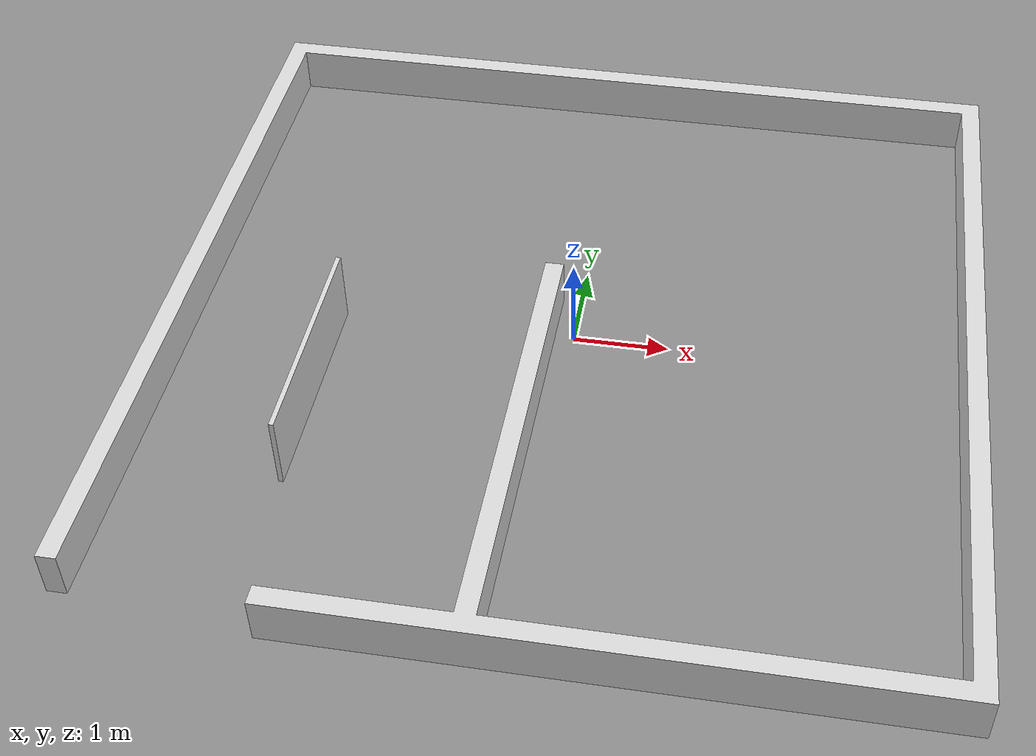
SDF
<!-- models/maze/model.sdf -->
<sdf version="1.6">
  <model name="maze">
    <static>true</static>
    <link name="maze_link">
      <visual name="maze_visual">
        <geometry>
          <mesh>
            <uri>model://maze/meshes/ground.dae</uri>
            <scale>0.001 0.001 0.001</scale>
          </mesh>
        </geometry>
      </visual>
      <collision name="maze_collision">
        <geometry>
          <mesh>
            <uri>model://maze/meshes/ground.dae</uri>
            <scale>0.001 0.001 0.001</scale>
          </mesh>
        </geometry>
      </collision>
    </link>
  </model>
</sdf>
